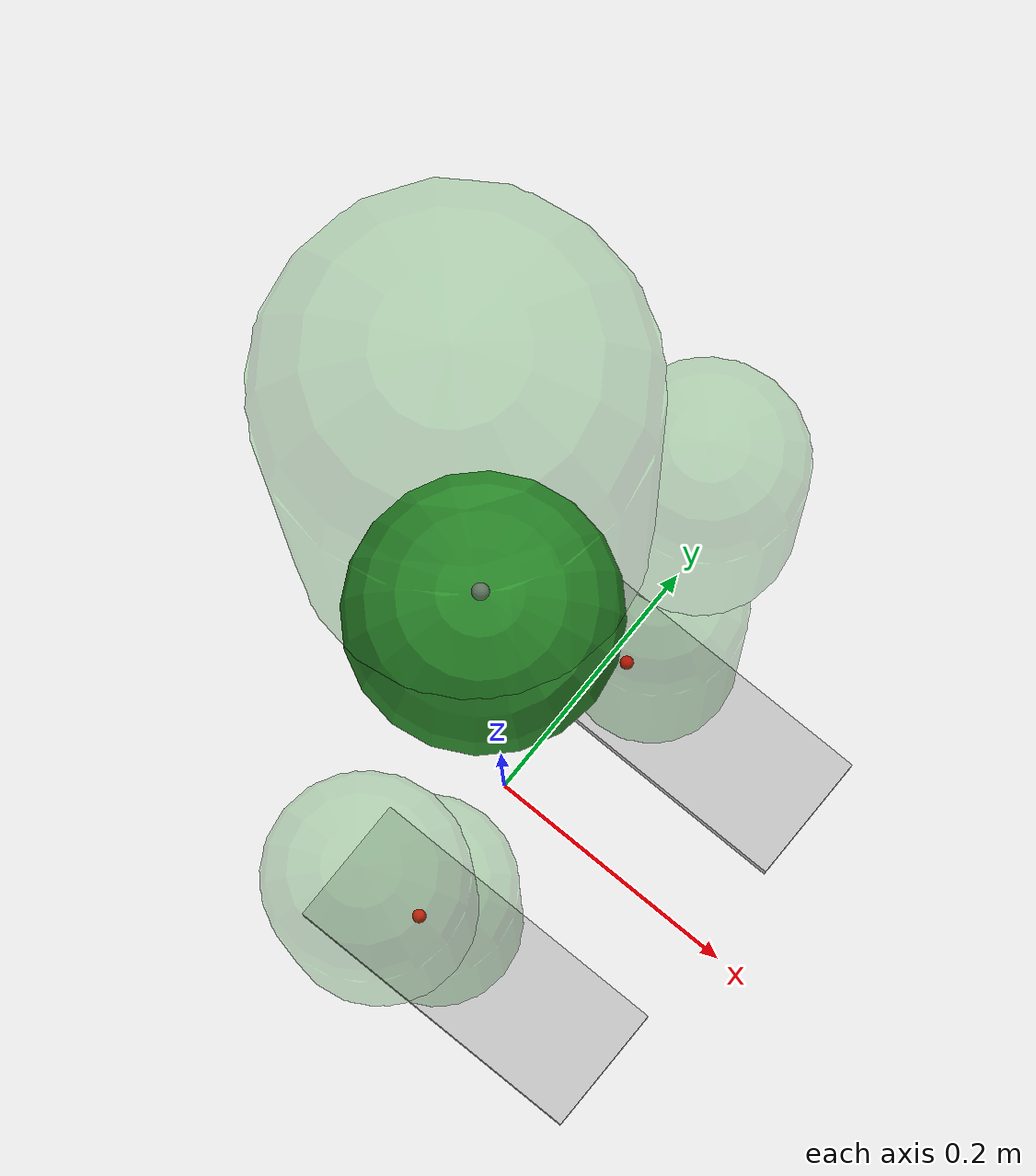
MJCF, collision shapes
<?xml version='1.0' encoding='utf-8'?>
<mujoco model="adam_lite">

  <compiler angle="radian" meshdir="assets/" />

  <default>
    <default class="adam_lite">
      <geom condim="1" contype="0" conaffinity="0"/>
      <joint damping="0.05" armature="0.01" frictionloss="0.2"/>

      <default class="hip">
        <default class="hip_pitch">
          <joint axis="0 1 0" range="-2.164 2.164" actuatorfrcrange="-230 230" armature="0.01"/>
        </default>
        <default class="hip_roll">
          <joint axis="1 0 0" actuatorfrcrange="-160 160" armature="0.01"/>
        </default>
        <default class="hip_yaw">
          <joint axis="0 0 1" range="-0.785 0.785" actuatorfrcrange="-105 105" armature="0.01"/>
        </default>
      </default>
      <default class="knee">
        <joint axis="0 1 0" range="0.052 2.391" actuatorfrcrange="-230 230" armature="0.01"/>
      </default>
      <default class="ankle">
        <default class="ankle_pitch">
          <joint axis="0 1 0" range="-1 0.35" actuatorfrcrange="-40 40" armature="0.01"/>
        </default>
        <default class="ankle_roll">
          <joint axis="1 0 0" range="-0.3491 0.3491" actuatorfrcrange="-12 12" armature="0.01"/>
        </default>
      </default>
      <default class="waist">
        <default class="waist_roll">
          <joint axis="1 0 0" range="-0.279 0.279" actuatorfrcrange="-110 110" armature="0.01"/>
        </default>
        <default class="waist_pitch">
          <joint axis="0 1 0" range="-0.663 1.361" actuatorfrcrange="-110 110" armature="0.01"/>
        </default>
        <default class="waist_yaw">
          <joint axis="0 0 1" range="-0.829 0.829" actuatorfrcrange="-110 110" armature="0.01"/>
        </default>
      </default>
      <default class="shoulder">
        <default class="shoulder_pitch">
          <joint axis="0 1 0" range="-3.613 2.042" actuatorfrcrange="-65 65" armature="0.01"/>
        </default>
        <default class="shoulder_roll">
          <joint axis="1 0 0" actuatorfrcrange="-65 65" armature="0.01"/>
        </default>
        <default class="shoulder_yaw">
          <joint axis="0 0 1" range="-2.583 2.583" actuatorfrcrange="-65 65" armature="0.01"/>
        </default>
      </default>
      <default class="elbow">
        <joint axis="0 1 0" range="-2.496 0.209" actuatorfrcrange="-30 30" armature="0.01"/>
      </default>

      <default class="visual">
        <geom group="2" type="mesh" density="0" material="silver"/>
      </default>
      <default class="collision">
        <geom group="3" rgba=".2 .6 .2 .3"/>
        <default class="foot">
          <geom size="0.1 0.04 0.005"/>
        </default>
      </default>
      <site group="5" rgba="1 0 0 1"/>
    </default>
  </default>
  <asset>
    <material name="silver" rgba="0.7 0.7 0.7 1"/>
    <material name="black" rgba="0.2 0.2 0.2 1"/>

    <mesh name="pelvis" file="pelvis.STL" />
    <mesh name="thighLeft" file="thighLeft.STL" />
    <mesh name="shinLeft" file="shinLeft.STL" />
    <mesh name="anklePitchLeft" file="anklePitchLeft.STL" />
    <mesh name="toeLeft" file="toeLeft.STL" />
    <mesh name="hipPitchRight" file="hipPitchRight.STL" />
    <mesh name="hipRollRight" file="hipRollRight.STL" />
    <mesh name="thighRight" file="thighRight.STL" />
    <mesh name="shinRight" file="shinRight.STL" />
    <mesh name="anklePitchRight" file="anklePitchRight.STL" />
    <mesh name="toeRight" file="toeRight.STL" />
    <mesh name="waistRoll_link" file="waistRoll_link.STL" />
    <mesh name="waistPitch_link" file="waistPitch_link.STL" />
    <mesh name="torso" file="torso.STL" />
    <mesh name="shoulderPitchLeft" file="shoulderPitchLeft.STL" />
    <mesh name="shoulderRollLeft" file="shoulderRollLeft.STL" />
    <mesh name="shoulderYawLeft" file="shoulderYawLeft.STL" />
    <mesh name="elbowLeft" file="elbowLeft.STL" />
    <mesh name="wristYawLeft" file="wristYawLeft.STL" />
    <mesh name="shoulderPitchRight" file="shoulderPitchRight.STL" />
    <mesh name="shoulderRollRight" file="shoulderRollRight.STL" />
    <mesh name="shoulderYawRight" file="shoulderYawRight.STL" />
    <mesh name="elbowRight" file="elbowRight.STL" />
    <mesh name="wristYawRight" file="wristYawRight.STL" />
  </asset>
  <worldbody>
    <body name="pelvis" pos="0 0 0.95">
      <inertial pos="-0.00034724 0 -0.00735759" quat="0.502838 0.502859 -0.497127 0.497143" mass="10.3565" diaginertia="0.0687803 0.0621174 0.0345151" />
      <freejoint name="root"/>
      <geom type="mesh" contype="0" conaffinity="0" group="2" density="0" rgba="0.752941 0.752941 0.752941 1" mesh="pelvis" />
      <geom name="pelvis_collision" class="collision" type="sphere" size="0.08" pos="0 0 -0.08" contype="1" conaffinity="0"/>
      <site name="imu_in_pelvis" pos="0 0 0" />
      <body name="hipPitchLeft" pos="0 0.0961925 -0.0332412" quat="0.953717 -0.300706 0 0">
        <inertial pos="-0.0566022 0.0576144 -0.00077159" quat="-0.0505313 0.548334 -0.448358 0.704097" mass="2.2338" diaginertia="0.00520115 0.00510328 0.00286381" />
        <joint name="hipPitch_Left" pos="0 0 0" axis="0 1 0" range="-2.164 2.164" actuatorfrcrange="-230 230" />
        <body name="hipRollLeft" pos="-0.0255 0.069 0" quat="0.953717 0.300706 0 0">
          <inertial pos="0.0392416 4.107e-05 -0.0103292" quat="0.0275849 0.82035 0.0241895 0.570683" mass="1.35108" diaginertia="0.00141452 0.00129056 0.00119603" />
          <joint name="hipRoll_Left" pos="0 0 0" axis="1 0 0" range="-0.733 1.605" actuatorfrcrange="-160 160" />
          <body name="thighLeft" pos="0.044 0 -0.0525">
            <inertial pos="0.00244052 -0.00866423 -0.134336" quat="0.711611 -0.0492483 0.0272749 0.700315" mass="6.43433" diaginertia="0.0639418 0.0583116 0.0126694" />
            <joint name="hipYaw_Left" pos="0 0 0" axis="0 0 1" range="-0.785 0.785" actuatorfrcrange="-105 105" />
          <geom type="mesh" contype="0" conaffinity="0" group="2" density="0" rgba="0.752941 0.752941 0.752941 1" mesh="thighLeft" />
          <geom name="left_thigh" class="collision" type="capsule" size="0.06" fromto="0.02 0 0 0.02 0 -0.20"/>
            <body name="shinLeft" pos="0 -0.0355 -0.369">
              <inertial pos="-0.00053135 0.00081959 -0.145381" quat="0.788039 0.00408898 0.00696215 0.615572" mass="2.25363" diaginertia="0.0215921 0.0215141 0.00136466" />
              <joint name="kneePitch_Left" pos="0 0 0" axis="0 1 0" range="0.052 2.391" actuatorfrcrange="-230 230" />
              <geom type="mesh" contype="0" conaffinity="0" group="2" density="0" rgba="0.752941 0.752941 0.752941 1" mesh="shinLeft" />
              <geom name="left_shin" class="collision" type="capsule" size="0.06" fromto="0.02 0 0 0.02 0 -0.25"/>
              <body name="anklePitchLeft" pos="0 0 -0.37">
                <inertial pos="0 0 0" mass="0.0301423" diaginertia="3.14e-06 3.14e-06 2.04e-06" />
                <joint name="anklePitch_Left" pos="0 0 0" axis="0 1 0" range="-1 0.35" actuatorfrcrange="-40 40" />
                <body name="toeLeft">
                  <site name="left_foot" rgba="1 0 0 1"/>
                  <site name="left_foot_top" pos="0.13 0 -0.054"/>
                  <inertial pos="0.0374997 -4.016e-05 -0.0419674" quat="-0.0209271 0.743591 -0.0168677 0.668094" mass="0.634796" diaginertia="0.00233488 0.00226889 0.000434699" />
                  <joint name="ankleRoll_Left" pos="0 0 0" axis="1 0 0" range="-0.3491 0.3491" actuatorfrcrange="-12 12" />
                  <geom type="mesh" contype="0" conaffinity="0" group="2" density="0" rgba="0.752941 0.752941 0.752941 1" mesh="toeLeft" />
                  <geom name="left_foot" class="foot" size="0.12 0.05 0.01" pos="0.05 0 -0.055" type="box" rgba="0.752941 0.752941 0.752941 1" />
                </body>
              </body>
            </body>
          </body>
        </body>
      </body>
      <body name="hipPitchRight" pos="0 -0.0961925 -0.0332412" quat="0.953717 0.300706 0 0">
        <inertial pos="-0.0566179 -0.0575934 -0.00078211" quat="0.0466125 0.551069 0.444978 0.704376" mass="2.23477" diaginertia="0.00520391 0.00510426 0.00286722" />
        <joint name="hipPitch_Right" pos="0 0 0" axis="0 1 0" range="-2.164 2.164" actuatorfrcrange="-230 230" />
        <body name="hipRollRight" pos="-0.0255 -0.069 0" quat="0.953717 -0.300706 0 0">
          <inertial pos="0.0392598 -5.814e-05 -0.0103241" quat="-0.02931 0.821547 -0.0263648 0.568776" mass="1.3517" diaginertia="0.00141668 0.00129138 0.00119538" />
          <joint name="hipRoll_Right" pos="0 0 0" axis="1 0 0" range="-1.605 0.733" actuatorfrcrange="-160 160" />
          <body name="thighRight" pos="0.044 0 -0.0525">
            <inertial pos="0.00245598 0.00865064 -0.134332" quat="0.700408 0.0274534 -0.0491764 0.711517" mass="6.43084" diaginertia="0.0639169 0.0582708 0.0126767" />
            <joint name="hipYaw_Right" pos="0 0 0" axis="0 0 1" range="-0.785 0.785" actuatorfrcrange="-105 105" />
            <geom type="mesh" contype="0" conaffinity="0" group="2" density="0" rgba="0.752941 0.752941 0.752941 1" mesh="thighRight" />
            <geom name="right_thigh" class="collision" type="capsule" size="0.06" fromto="0.02 0 0 0.02 0 -0.20"/>
            <body name="shinRight" pos="0 0.0355 -0.369">
              <inertial pos="-0.00052844 -0.00082152 -0.145334" quat="0.619488 0.00695186 0.00407547 0.784965" mass="2.25459" diaginertia="0.0215721 0.021496 0.00136482" />
              <joint name="kneePitch_Right" pos="0 0 0" axis="0 1 0" range="0.052 2.391" actuatorfrcrange="-230 230" />
              <geom type="mesh" contype="0" conaffinity="0" group="2" density="0" rgba="0.752941 0.752941 0.752941 1" mesh="shinRight" />
              <geom name="right_shin" class="collision" type="capsule" size="0.06" fromto="0.02 0 0 0.02 0 -0.25"/>
              <body name="anklePitchRight" pos="0 0 -0.37">
                <inertial pos="0 0 0" mass="0.0301423" diaginertia="3.14e-06 3.14e-06 2.04e-06" />
                <joint name="anklePitch_Right" pos="0 0 0" axis="0 1 0" range="-1 0.35" actuatorfrcrange="-40 40" />
                <body name="toeRight">
                  <site name="right_foot" rgba="1 0 0 1"/>
                  <site name="right_foot_top" pos="0.13 0 -0.054"/>
                  <inertial pos="0.0375023 4.002e-05 -0.0419671" quat="0.0209768 0.743592 0.0169235 0.66809" mass="0.634808" diaginertia="0.00233489 0.00226889 0.000434726" />
                  <joint name="ankleRoll_Right" pos="0 0 0" axis="1 0 0" range="-0.3491 0.3491" actuatorfrcrange="-12 12" />
                  <geom type="mesh" contype="0" conaffinity="0" group="2" density="0" rgba="0.752941 0.752941 0.752941 1" mesh="toeRight" />
                  <geom name="right_foot" class="foot" size="0.12 0.05 0.01" pos="0.05 0 -0.055" type="box" rgba="0.752941 0.752941 0.752941 1" />
                </body>
              </body>
            </body>
          </body>
        </body>
      </body>
      <body name="waistRoll_link" pos="0 0 0.044">
        <inertial pos="0.00093826 0.00093832 0.0399999" quat="0.920274 -0.012433 -0.0050157 0.391045" mass="2.36268" diaginertia="0.00543214 0.00543129 0.00184735" />
        <joint name="waistRoll" pos="0 0 0" axis="1 0 0" range="-0.279 0.279" actuatorfrcrange="-110 110" />
        <body name="waistPitch_link" pos="0 0 0.08">
          <inertial pos="-8.401e-05 0.00189362 0.0254832" quat="0.480284 0.467519 -0.524152 0.525374" mass="0.563538" diaginertia="0.0015597 0.00151436 0.000672504" />
          <joint name="waistPitch" pos="0 0 0" axis="0 1 0" range="-0.663 1.361" actuatorfrcrange="-110 110" />
          <body name="torso" pos="0 0.0005 0.053">
            <inertial pos="-0.00183601 0.00056583 0.166624" quat="0.999918 0.00136566 0.0120111 0.00418418" mass="13.4634" diaginertia="0.211446 0.168649 0.0770067" />
            <joint name="waistYaw" pos="0 0 0" axis="0 0 1" range="-0.829 0.829" actuatorfrcrange="-110 110" />
            <geom type="mesh" contype="0" conaffinity="0" group="2" density="0" rgba="0.752941 0.752941 0.752941 1" mesh="torso" />
            <geom name="torso" class="collision" type="capsule" size="0.09" fromto="0 0 0.06 0 0 0.40"/>
            <body name="shoulderPitchLeft" pos="0 0.165094 0.25923" quat="0.984808 0.173648 0 0">
              <inertial pos="0.00542694 0.0268987 0.00010792" quat="-0.0545235 0.707235 0.0545271 0.702761" mass="0.216148" diaginertia="0.000380648 0.000322754 0.000187228" />
              <joint name="shoulderPitch_Left" pos="0 0 0" axis="0 1 0" range="-3.613 2.042" actuatorfrcrange="-65 65" />
              <body name="shoulderRollLeft" pos="0.0362 0.0435 0" quat="0.984808 -0.173648 0 0">
                <inertial pos="-0.0343733 0.00962154 -0.0154456" quat="0.942019 0.255487 0.0666284 -0.207093" mass="1.07882" diaginertia="0.00167363 0.00165995 0.000668084" />
                <joint name="shoulderRoll_Left" pos="0 0 0" axis="1 0 0" range="-0.628 2.793" actuatorfrcrange="-65 65" />
                <body name="shoulderYawLeft" pos="-0.0362 0.034 -0.0797">
                  <inertial pos="-0.00051421 -0.00044442 -0.0619328" quat="0.999912 -0.00948825 0.00877343 0.00302026" mass="0.90142" diaginertia="0.00328641 0.0031732 0.000574119" />
                  <joint name="shoulderYaw_Left" pos="0 0 0" axis="0 0 1" range="-2.583 2.583" actuatorfrcrange="-65 65" />
                  <body name="elbowLeft" pos="0 -0.0285 -0.18295">
                    <inertial pos="-0.0140727 0.0292971 -0.0253473" quat="0.716894 0.14594 0.188043 0.65529" mass="0.917707" diaginertia="0.00110505 0.00109887 0.000457654" />
                    <joint name="elbow_Left" pos="0 0 0" axis="0 1 0" range="-2.496 0.209" actuatorfrcrange="-30 30" />
                    <body name="wristYawLeft" pos="-0.025 0.0285 -0.0729">
                      <inertial pos="-1.685e-05 8.017e-05 -0.15736" quat="0.697434 0.000132018 -0.000320426 0.716649" mass="0.732343" diaginertia="0.00737681 0.00737465 0.000274077" />
                      <joint name="wristYaw_Left" pos="0 0 0" axis="0 0 1" actuatorfrcrange="-6.4 6.4" />
                    </body>
                  </body>
                </body>
              </body>
            </body>
            <body name="shoulderPitchRight" pos="0 -0.165094 0.25923" quat="0.984808 -0.173648 0 0">
              <inertial pos="0.00536737 -0.0269397 0.00010693" quat="0.0534521 0.70731 -0.0534944 0.702847" mass="0.216487" diaginertia="0.000381338 0.000323123 0.000187559" />
              <joint name="shoulderPitch_Right" pos="0 0 0" axis="0 1 0" range="-3.613 2.042" actuatorfrcrange="-65 65" />
              <body name="shoulderRollRight" pos="0.0362 -0.0435 0" quat="0.984808 0.173648 0 0">
                <inertial pos="-0.0342995 -0.00987424 -0.0157184" quat="0.935991 -0.254513 0.072526 0.232131" mass="1.08875" diaginertia="0.0017015 0.00168047 0.000675786" />
                <joint name="shoulderRoll_Right" pos="0 0 0" axis="1 0 0" range="-2.793 0.628" actuatorfrcrange="-65 65" />
                <body name="shoulderYawRight" pos="-0.0362 -0.034 -0.0797">
                  <inertial pos="-0.00051403 0.00046316 -0.0619299" quat="0.999904 0.00944783 0.00878884 -0.00513002" mass="0.901393" diaginertia="0.00328611 0.00317291 0.000574074" />
                  <joint name="shoulderYaw_Right" pos="0 0 0" axis="0 0 1" range="-2.583 2.583" actuatorfrcrange="-65 65" />
                  <body name="elbowRight" pos="0 0.0285 -0.18295">
                    <inertial pos="-0.0140891 -0.0292958 -0.0253475" quat="0.638945 0.191038 0.141578 0.73158" mass="0.917707" diaginertia="0.00110466 0.00109851 0.000457521" />
                    <joint name="elbow_Right" pos="0 0 0" axis="0 1 0" range="-2.496 0.209" actuatorfrcrange="-30 30" />
                    <body name="wristYawRight" pos="-0.025 -0.0285 -0.0729">
                      <inertial pos="1.828e-05 -7.309e-05 -0.156668" quat="0.707356 -0.000166244 0.000366098 0.706857" mass="0.732844" diaginertia="0.00727528 0.00727317 0.000274245" />
                      <joint name="wristYaw_Right" pos="0 0 0" axis="0 0 1" actuatorfrcrange="-6.4 6.4" />
                    </body>
                  </body>
                </body>
              </body>
            </body>
          </body>
        </body>
      </body>
    </body>
  </worldbody>

  <contact>
    <pair name="left_foot_floor" geom1="left_foot" geom2="floor" condim="3" friction="0.6 0.6"/>
    <pair name="right_foot_floor" geom1="right_foot" geom2="floor" condim="3" friction="0.6 0.6"/>
    <pair name="left_shin_floor" geom1="left_shin" geom2="floor" condim="3" friction="0.6 0.6"/>
    <pair name="right_shin_floor" geom1="right_shin" geom2="floor" condim="3" friction="0.6 0.6"/>
    <pair name="pelvis_floor" geom1="pelvis_collision" geom2="floor" condim="3" friction="0.6 0.6"/>
    <pair name="torso_floor" geom1="torso" geom2="floor" condim="3" friction="0.6 0.6"/>
  </contact>

  <actuator>
    <motor joint="hipPitch_Left" name="hipPitch_Left" ctrlrange="-230.0 230.0" />
    <motor joint="hipRoll_Left" name="hipRoll_Left" ctrlrange="-160.0 160.0" />
    <motor joint="hipYaw_Left" name="hipYaw_Left" ctrlrange="-105.0 105.0" />
    <motor joint="kneePitch_Left" name="kneePitch_Left" ctrlrange="-230.0 230.0" />
    <motor joint="anklePitch_Left" name="anklePitch_Left" ctrlrange="-40.0 40.0" />
    <motor joint="ankleRoll_Left" name="ankleRoll_Left" ctrlrange="-12.0 12.0" />
    <motor joint="hipPitch_Right" name="hipPitch_Right" ctrlrange="-230.0 230.0" />
    <motor joint="hipRoll_Right" name="hipRoll_Right" ctrlrange="-160.0 160.0" />
    <motor joint="hipYaw_Right" name="hipYaw_Right" ctrlrange="-105.0 105.0" />
    <motor joint="kneePitch_Right" name="kneePitch_Right" ctrlrange="-230.0 230.0" />
    <motor joint="anklePitch_Right" name="anklePitch_Right" ctrlrange="-40.0 40.0" />
    <motor joint="ankleRoll_Right" name="ankleRoll_Right" ctrlrange="-12.0 12.0" />
    <motor joint="waistRoll" name="waistRoll" ctrlrange="-110.0 110.0" />
    <motor joint="waistPitch" name="waistPitch" ctrlrange="-110.0 110.0" />
    <motor joint="waistYaw" name="waistYaw" ctrlrange="-110.0 110.0" />
    <motor joint="shoulderPitch_Left" name="shoulderPitch_Left" ctrlrange="-65.0 65.0" />
    <motor joint="shoulderRoll_Left" name="shoulderRoll_Left" ctrlrange="-65.0 65.0" />
    <motor joint="shoulderYaw_Left" name="shoulderYaw_Left" ctrlrange="-65.0 65.0" />
    <motor joint="elbow_Left" name="elbow_Left" ctrlrange="-30.0 30.0" />
    <motor joint="wristYaw_Left" name="wristYaw_Left" ctrlrange="-6.4 6.4" />
    <motor joint="shoulderPitch_Right" name="shoulderPitch_Right" ctrlrange="-65.0 65.0" />
    <motor joint="shoulderRoll_Right" name="shoulderRoll_Right" ctrlrange="-65.0 65.0" />
    <motor joint="shoulderYaw_Right" name="shoulderYaw_Right" ctrlrange="-65.0 65.0" />
    <motor joint="elbow_Right" name="elbow_Right" ctrlrange="-30.0 30.0" />
    <motor joint="wristYaw_Right" name="wristYaw_Right" ctrlrange="-6.4 6.4" />
  </actuator>
  <sensor>
    <jointpos name="pos_hipPitch_Left" joint="hipPitch_Left" />
    <jointpos name="pos_hipRoll_Left" joint="hipRoll_Left" />
    <jointpos name="pos_hipYaw_Left" joint="hipYaw_Left" />
    <jointpos name="pos_kneePitch_Left" joint="kneePitch_Left" />
    <jointpos name="pos_anklePitch_Left" joint="anklePitch_Left" />
    <jointpos name="pos_ankleRoll_Left" joint="ankleRoll_Left" />
    <jointpos name="pos_hipPitch_Right" joint="hipPitch_Right" />
    <jointpos name="pos_hipRoll_Right" joint="hipRoll_Right" />
    <jointpos name="pos_hipYaw_Right" joint="hipYaw_Right" />
    <jointpos name="pos_kneePitch_Right" joint="kneePitch_Right" />
    <jointpos name="pos_anklePitch_Right" joint="anklePitch_Right" />
    <jointpos name="pos_ankleRoll_Right" joint="ankleRoll_Right" />
    <jointpos name="pos_waistRoll" joint="waistRoll" />
    <jointpos name="pos_waistPitch" joint="waistPitch" />
    <jointpos name="pos_waistYaw" joint="waistYaw" />
    <jointpos name="pos_shoulderPitch_Left" joint="shoulderPitch_Left" />
    <jointpos name="pos_shoulderRoll_Left" joint="shoulderRoll_Left" />
    <jointpos name="pos_shoulderYaw_Left" joint="shoulderYaw_Left" />
    <jointpos name="pos_elbow_Left" joint="elbow_Left" />
    <jointpos name="pos_wristYaw_Left" joint="wristYaw_Left" />
    <jointpos name="pos_shoulderPitch_Right" joint="shoulderPitch_Right" />
    <jointpos name="pos_shoulderRoll_Right" joint="shoulderRoll_Right" />
    <jointpos name="pos_shoulderYaw_Right" joint="shoulderYaw_Right" />
    <jointpos name="pos_elbow_Right" joint="elbow_Right" />
    <jointpos name="pos_wristYaw_Right" joint="wristYaw_Right" />
    <jointvel name="vel_hipPitch_Left" joint="hipPitch_Left" />
    <jointvel name="vel_hipRoll_Left" joint="hipRoll_Left" />
    <jointvel name="vel_hipYaw_Left" joint="hipYaw_Left" />
    <jointvel name="vel_kneePitch_Left" joint="kneePitch_Left" />
    <jointvel name="vel_anklePitch_Left" joint="anklePitch_Left" />
    <jointvel name="vel_ankleRoll_Left" joint="ankleRoll_Left" />
    <jointvel name="vel_hipPitch_Right" joint="hipPitch_Right" />
    <jointvel name="vel_hipRoll_Right" joint="hipRoll_Right" />
    <jointvel name="vel_hipYaw_Right" joint="hipYaw_Right" />
    <jointvel name="vel_kneePitch_Right" joint="kneePitch_Right" />
    <jointvel name="vel_anklePitch_Right" joint="anklePitch_Right" />
    <jointvel name="vel_ankleRoll_Right" joint="ankleRoll_Right" />
    <jointvel name="vel_waistRoll" joint="waistRoll" />
    <jointvel name="vel_waistPitch" joint="waistPitch" />
    <jointvel name="vel_waistYaw" joint="waistYaw" />
    <jointvel name="vel_shoulderPitch_Left" joint="shoulderPitch_Left" />
    <jointvel name="vel_shoulderRoll_Left" joint="shoulderRoll_Left" />
    <jointvel name="vel_shoulderYaw_Left" joint="shoulderYaw_Left" />
    <jointvel name="vel_elbow_Left" joint="elbow_Left" />
    <jointvel name="vel_wristYaw_Left" joint="wristYaw_Left" />
    <jointvel name="vel_shoulderPitch_Right" joint="shoulderPitch_Right" />
    <jointvel name="vel_shoulderRoll_Right" joint="shoulderRoll_Right" />
    <jointvel name="vel_shoulderYaw_Right" joint="shoulderYaw_Right" />
    <jointvel name="vel_elbow_Right" joint="elbow_Right" />
    <jointvel name="vel_wristYaw_Right" joint="wristYaw_Right" />
    <jointactuatorfrc name="force_hipPitch_Left" joint="hipPitch_Left" />
    <jointactuatorfrc name="force_hipRoll_Left" joint="hipRoll_Left" />
    <jointactuatorfrc name="force_hipYaw_Left" joint="hipYaw_Left" />
    <jointactuatorfrc name="force_kneePitch_Left" joint="kneePitch_Left" />
    <jointactuatorfrc name="force_anklePitch_Left" joint="anklePitch_Left" />
    <jointactuatorfrc name="force_ankleRoll_Left" joint="ankleRoll_Left" />
    <jointactuatorfrc name="force_hipPitch_Right" joint="hipPitch_Right" />
    <jointactuatorfrc name="force_hipRoll_Right" joint="hipRoll_Right" />
    <jointactuatorfrc name="force_hipYaw_Right" joint="hipYaw_Right" />
    <jointactuatorfrc name="force_kneePitch_Right" joint="kneePitch_Right" />
    <jointactuatorfrc name="force_anklePitch_Right" joint="anklePitch_Right" />
    <jointactuatorfrc name="force_ankleRoll_Right" joint="ankleRoll_Right" />
    <jointactuatorfrc name="force_waistRoll" joint="waistRoll" />
    <jointactuatorfrc name="force_waistPitch" joint="waistPitch" />
    <jointactuatorfrc name="force_waistYaw" joint="waistYaw" />
    <jointactuatorfrc name="force_shoulderPitch_Left" joint="shoulderPitch_Left" />
    <jointactuatorfrc name="force_shoulderRoll_Left" joint="shoulderRoll_Left" />
    <jointactuatorfrc name="force_shoulderYaw_Left" joint="shoulderYaw_Left" />
    <jointactuatorfrc name="force_elbow_Left" joint="elbow_Left" />
    <jointactuatorfrc name="force_wristYaw_Left" joint="wristYaw_Left" />
    <jointactuatorfrc name="force_shoulderPitch_Right" joint="shoulderPitch_Right" />
    <jointactuatorfrc name="force_shoulderRoll_Right" joint="shoulderRoll_Right" />
    <jointactuatorfrc name="force_shoulderYaw_Right" joint="shoulderYaw_Right" />
    <jointactuatorfrc name="force_elbow_Right" joint="elbow_Right" />
    <jointactuatorfrc name="force_wristYaw_Right" joint="wristYaw_Right" />
    <accelerometer name="BodyAcc" site="imu_in_pelvis" />
    <gyro name="BodyGyro" site="imu_in_pelvis" />
    <gyro site="imu_in_pelvis" name="gyro_pelvis"/>
    <framepos name="BodyPos" objtype="site" objname="imu_in_pelvis" />
    <framelinvel name="BodyVel" objtype="site" objname="imu_in_pelvis" />
    <framequat name="BodyQuat" objtype="site" objname="imu_in_pelvis" />
  </sensor>
</mujoco>
